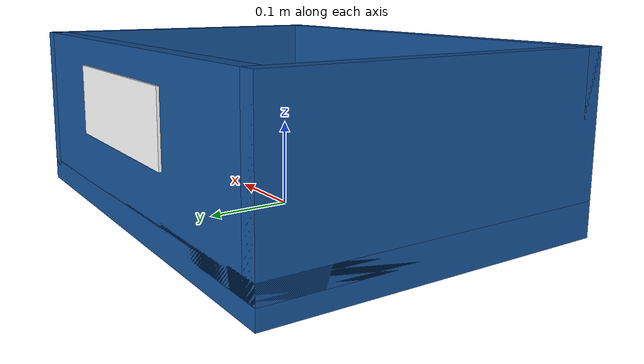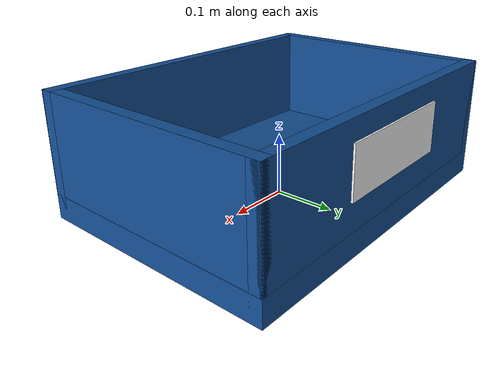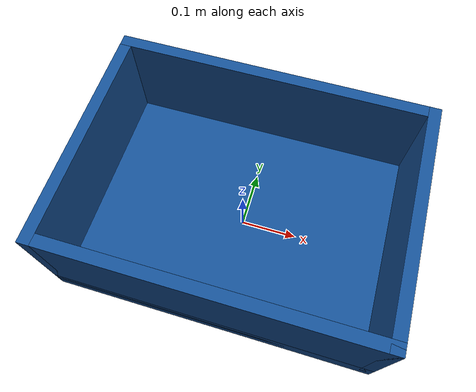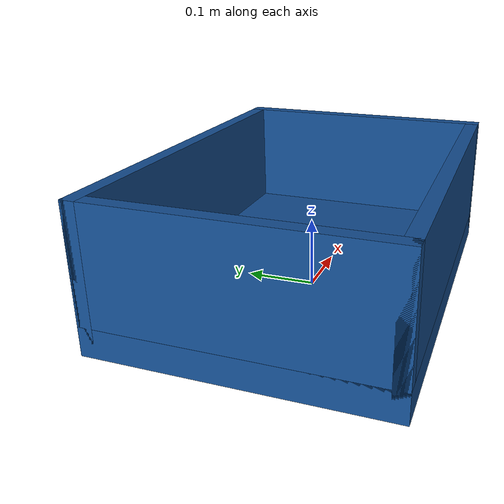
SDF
<?xml version="1.0"?>
<sdf version="1.6">
  <model name="parts_bin">
    <static>true</static>
    <link name="bin">
      <collision name="base_collision">
        <pose>0 0 0.02 0 0 0</pose>
        <geometry>
          <box>
            <size>0.55 0.40 0.04</size>
          </box>
        </geometry>
      </collision>
      <collision name="wall_left_collision">
        <pose>0.265 0 0.11 0 0 0</pose>
        <geometry>
          <box>
            <size>0.02 0.40 0.18</size>
          </box>
        </geometry>
      </collision>
      <collision name="wall_right_collision">
        <pose>-0.265 0 0.11 0 0 0</pose>
        <geometry>
          <box>
            <size>0.02 0.40 0.18</size>
          </box>
        </geometry>
      </collision>
      <collision name="wall_front_collision">
        <pose>0 0.19 0.11 0 0 0</pose>
        <geometry>
          <box>
            <size>0.55 0.02 0.18</size>
          </box>
        </geometry>
      </collision>
      <collision name="wall_back_collision">
        <pose>0 -0.19 0.11 0 0 0</pose>
        <geometry>
          <box>
            <size>0.55 0.02 0.18</size>
          </box>
        </geometry>
      </collision>
      <visual name="base_visual">
        <pose>0 0 0.02 0 0 0</pose>
        <geometry>
          <box>
            <size>0.55 0.40 0.04</size>
          </box>
        </geometry>
        <material>
          <ambient>0.06 0.24 0.44 1</ambient>
          <diffuse>0.08 0.31 0.58 1</diffuse>
        </material>
      </visual>
      <visual name="wall_left_visual">
        <pose>0.265 0 0.11 0 0 0</pose>
        <geometry>
          <box>
            <size>0.02 0.40 0.18</size>
          </box>
        </geometry>
        <material>
          <ambient>0.06 0.24 0.44 1</ambient>
          <diffuse>0.08 0.31 0.58 1</diffuse>
        </material>
      </visual>
      <visual name="wall_right_visual">
        <pose>-0.265 0 0.11 0 0 0</pose>
        <geometry>
          <box>
            <size>0.02 0.40 0.18</size>
          </box>
        </geometry>
        <material>
          <ambient>0.06 0.24 0.44 1</ambient>
          <diffuse>0.08 0.31 0.58 1</diffuse>
        </material>
      </visual>
      <visual name="wall_front_visual">
        <pose>0 0.19 0.11 0 0 0</pose>
        <geometry>
          <box>
            <size>0.55 0.02 0.18</size>
          </box>
        </geometry>
        <material>
          <ambient>0.06 0.24 0.44 1</ambient>
          <diffuse>0.08 0.31 0.58 1</diffuse>
        </material>
      </visual>
      <visual name="wall_back_visual">
        <pose>0 -0.19 0.11 0 0 0</pose>
        <geometry>
          <box>
            <size>0.55 0.02 0.18</size>
          </box>
        </geometry>
        <material>
          <ambient>0.06 0.24 0.44 1</ambient>
          <diffuse>0.08 0.31 0.58 1</diffuse>
        </material>
      </visual>
      <visual name="label_visual">
        <pose>0 0.205 0.13 0 0 0</pose>
        <geometry>
          <box>
            <size>0.22 0.003 0.08</size>
          </box>
        </geometry>
        <material>
          <ambient>0.95 0.95 0.95 1</ambient>
          <diffuse>0.98 0.98 0.98 1</diffuse>
        </material>
      </visual>
    </link>
  </model>
</sdf>
